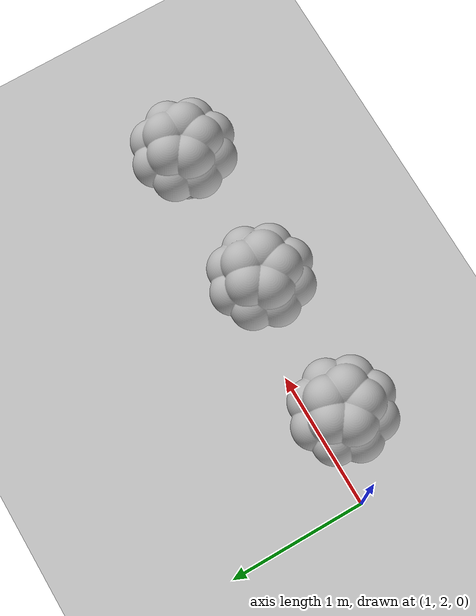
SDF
<?xml version="1.0" ?>
<sdf version="1.11">
  <world name="obstacles_world">

        <!-- Basic physics -->
    <physics name="default_physics" type="ode">
      <max_step_size>0.001</max_step_size>
      <real_time_factor>1.0</real_time_factor>
    </physics>

    <model name="ground_plane">
      <static>true</static>
      <link name="link">
        <collision name="collision">
          <geometry>
            <plane>
              <normal>0 0 1</normal>
              <size>300 300</size>
            </plane>
          </geometry>
        </collision>
        <visual name="visual">
          <geometry>
            <plane>
              <normal>0 0 1</normal>
              <size>100 100</size>
            </plane>
          </geometry>
          <material>
            <ambient>0.8 0.8 0.8 1</ambient>
            <diffuse>0.8 0.8 0.8 1</diffuse>
            <specular>0.8 0.8 0.8 1</specular>
          </material>
        </visual>
      </link>
    </model>

    <light type="directional" name="sun">
      <cast_shadows>true</cast_shadows>
      <pose>0 0 10 0 0 0</pose>
      <diffuse>0.8 0.8 0.8 1</diffuse>
      <specular>0.2 0.2 0.2 1</specular>
      <attenuation>
        <range>1000</range>
        <constant>0.9</constant>
        <linear>0.01</linear>
        <quadratic>0.001</quadratic>
      </attenuation>
      <direction>-0.5 0.1 -0.9</direction>
    </light>

    <include>
      <uri>model://vegetable_crop</uri>
      <name>vegetable_crop_1</name>
      <pose>1 1 0 0 0 0</pose>
    </include>

    <include>
      <uri>model://vegetable_crop</uri>
      <name>vegetable_crop_2</name>
      <pose>2 1 0 0 0 0</pose>
    </include>

    <include>
      <uri>model://vegetable_crop</uri>
      <name>vegetable_crop_3</name>
      <pose>3 1 0 0 0 0</pose>
    </include>

  </world>
</sdf>

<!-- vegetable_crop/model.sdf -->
<sdf version="1.6">
  <model name="vegetable_crop">
    <static>true</static>

    <link name="link">
      <visual name="visual">
        <geometry>
          <mesh>
            <uri>model://vegetable_crop/meshes/vegetable_crop.stl</uri>
            <scale>0.001 0.001 0.001</scale>
          </mesh>
        </geometry>
      </visual>

      <collision name="collision">
        <geometry>
          <box>
            <size>0.4 0.4 0.8</size>
          </box>
        </geometry>
      </collision>
    </link>
  </model>
</sdf>
